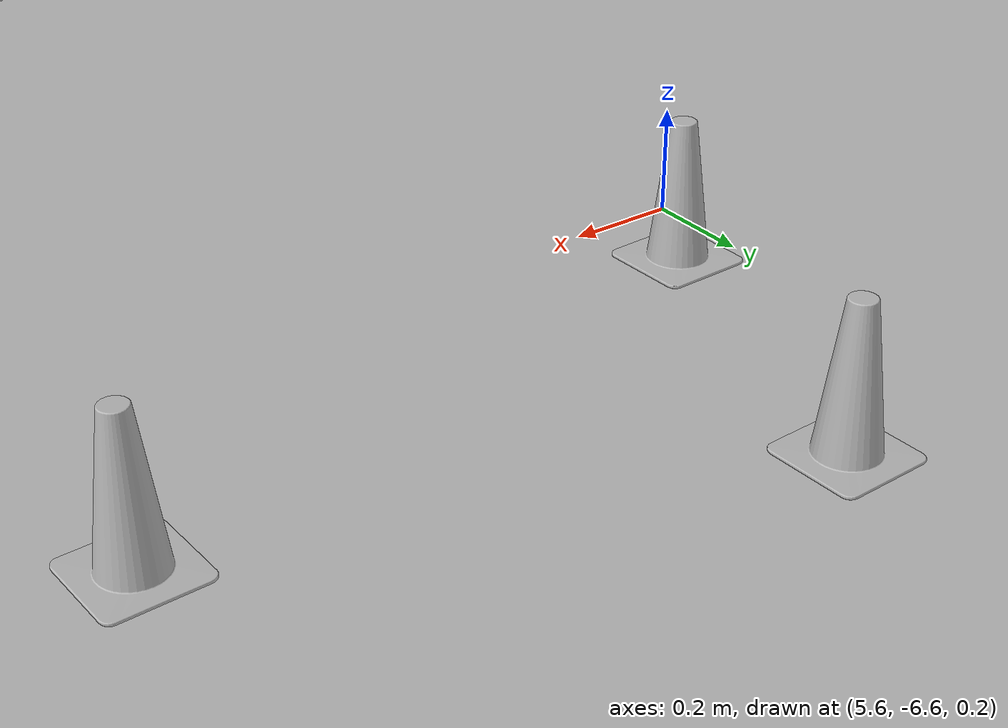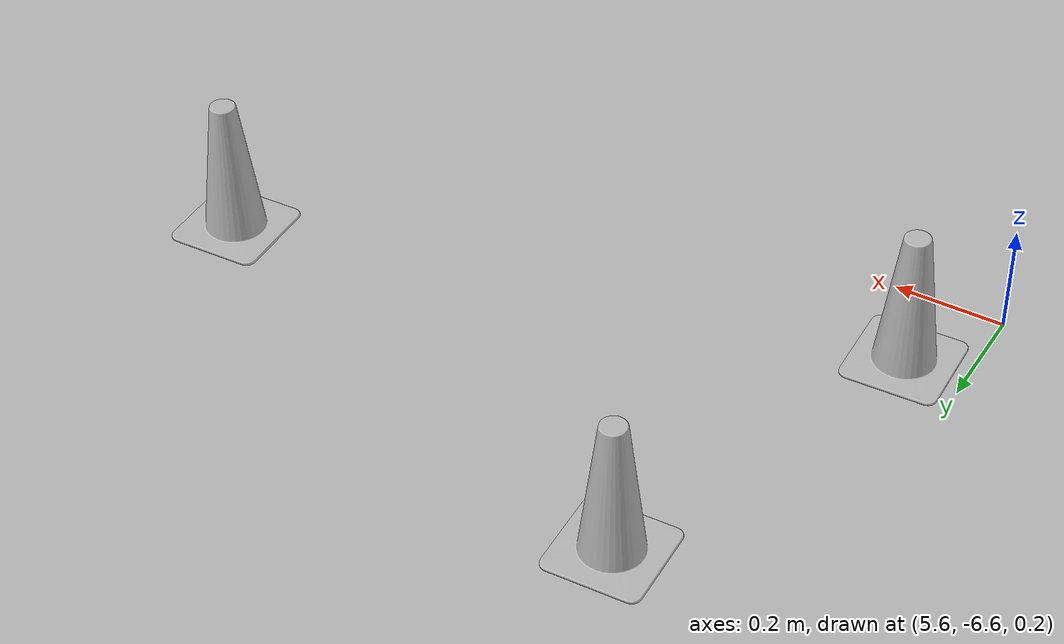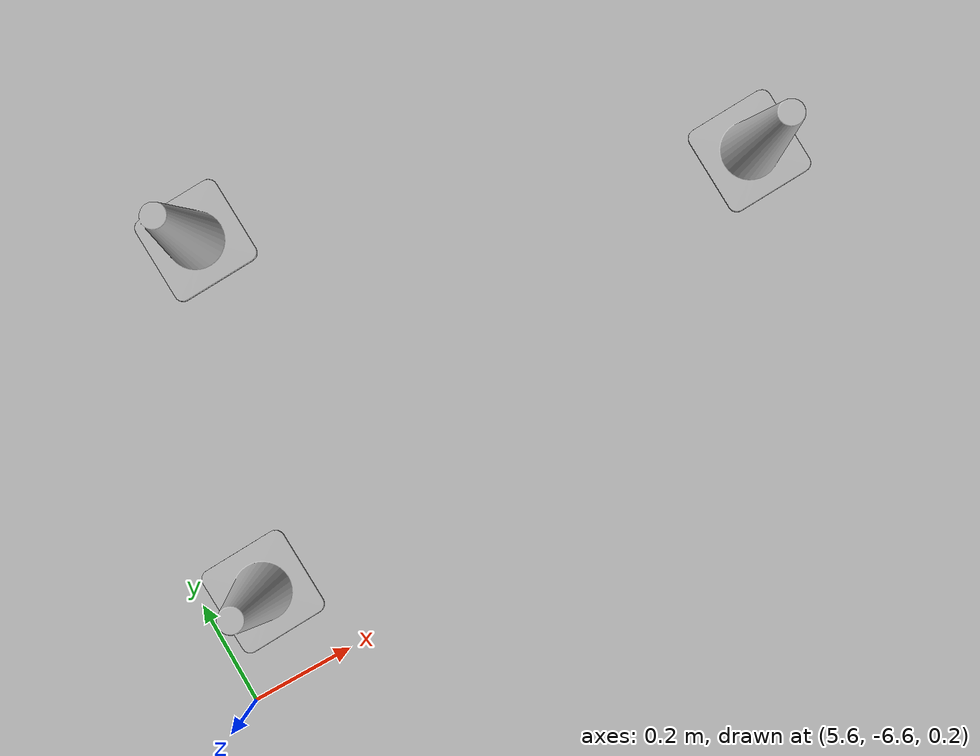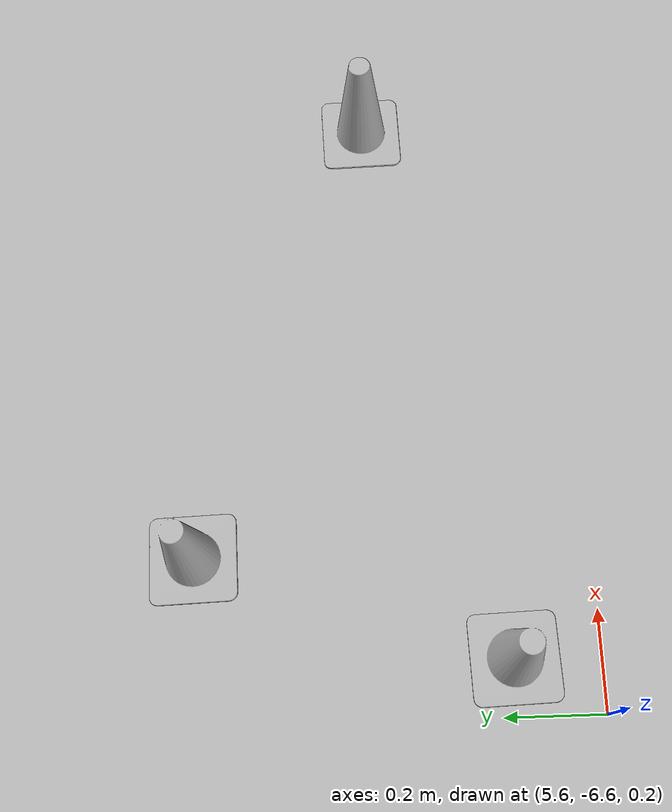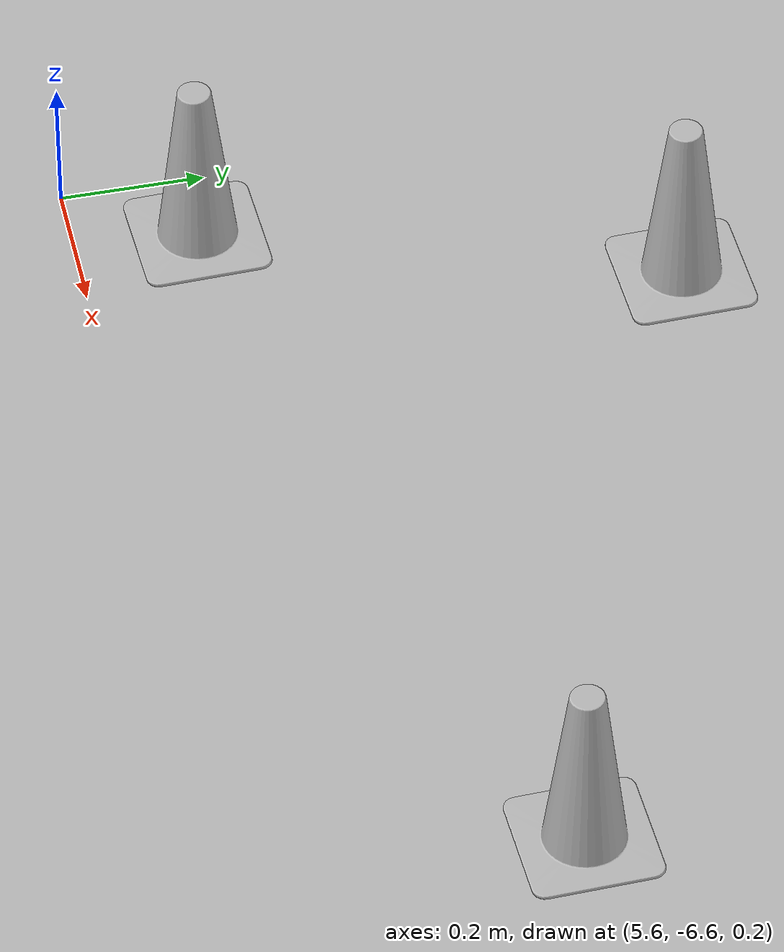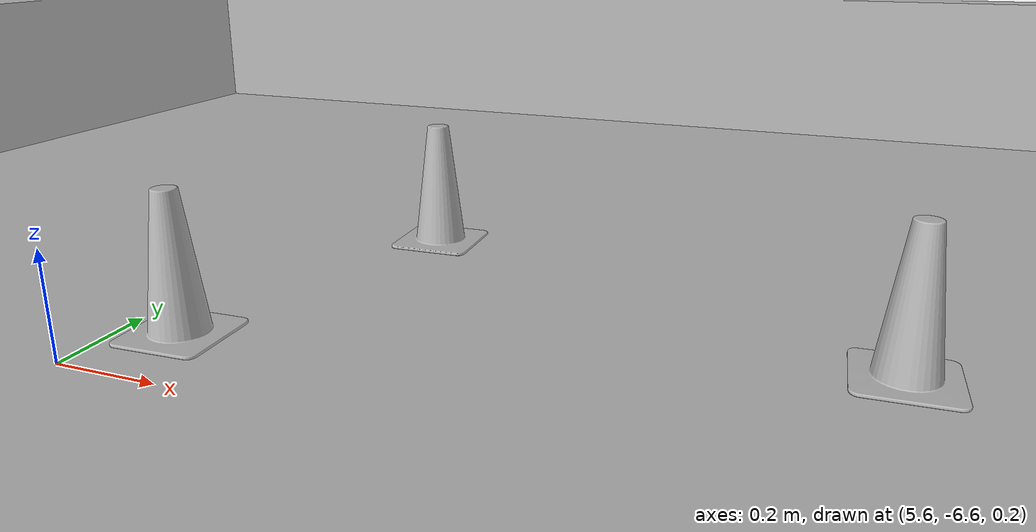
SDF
<?xml version="1.0"?>

<sdf version='1.9'>

  <world name='nav'>

    <physics name="1ms" type="ignored">
      <max_step_size>0.001</max_step_size>
      <real_time_factor>1.0</real_time_factor>
    </physics>

    <plugin
      filename="gz-sim-physics-system"
      name="gz::sim::systems::Physics">
    </plugin>
    <plugin
      filename="gz-sim-user-commands-system"
      name="gz::sim::systems::UserCommands">
    </plugin>
    <plugin
      filename="gz-sim-scene-broadcaster-system"
      name="gz::sim::systems::SceneBroadcaster">
    </plugin>
    <plugin
      filename="gz-sim-contact-system"
      name="gz::sim::systems::Contact">
    </plugin>
    <plugin
      filename="gz-sim-sensors-system"
      name="gz::sim::systems::Sensors">
      <render_engine>ogre2</render_engine>
    </plugin>

    <light name='sun' type='point'>
      <cast_shadows>true</cast_shadows>
      <visualize>true</visualize>
      <intensity>5.0</intensity>
      <pose>5.8 -6.3 6 0 0 0</pose>
      <diffuse>1 1 1 1</diffuse>
      <specular>0.6 0.6 0.6 1</specular>
      <attenuation>
        <range>1000</range>
        <constant>0.9</constant>
        <linear>0.5</linear>
        <quadratic>0.02</quadratic>
      </attenuation>
      <direction>-0.5 0.5 -1.0</direction>
    </light>

    <scene>
      <ambient>1 1 1 1</ambient>
      <background>1 1 1 1</background>
      <shadows>1</shadows>
      <grid>false</grid>
      <sky>
        <sunset>20</sunset>
      </sky>
    </scene>

    <model name='ground'>
      <pose>6.31 -6.3 0 1.57 0 0</pose>
      <static>true</static>
      <link name='link'>
        <collision name='collision'>
          <geometry>
            <mesh>
              <uri>meshes/nav.obj</uri>
              <scale>1 1 1</scale>
            </mesh>
          </geometry>
        </collision>
        <visual name='visual'>
          <geometry>
            <mesh>
              <uri>meshes/nav.obj</uri>
              <scale>1 1 1</scale>
            </mesh>
          </geometry>
        </visual>
      </link>
    </model>

    <model name='cone_1'>
      <pose>6.90 -6.16 0.20 1.57 0 0.35</pose>
      <static>true</static>
      <link name='link'>
        <collision name='collision'>
          <geometry>
            <mesh>
              <uri>meshes/traffic_cone.obj</uri>
              <scale>0.1 0.1 0.1</scale>
            </mesh>
          </geometry>
        </collision>
        <visual name='visual'>
          <geometry>
            <mesh>
              <uri>meshes/traffic_cone.obj</uri>
              <scale>0.1 0.1 0.1</scale>
            </mesh>
          </geometry>
        </visual>
      </link>
    </model>

    <model name='cone_2'>
      <pose>5.71 -6.43 0.20 1.57 0 0.35</pose>
      <static>true</static>
      <link name='link'>
        <collision name='collision'>
          <geometry>
            <mesh>
              <uri>meshes/traffic_cone.obj</uri>
              <scale>0.1 0.1 0.1</scale>
            </mesh>
          </geometry>
        </collision>
        <visual name='visual'>
          <geometry>
            <mesh>
              <uri>meshes/traffic_cone.obj</uri>
              <scale>0.1 0.1 0.1</scale>
            </mesh>
          </geometry>
        </visual>
      </link>
    </model>

    <model name='cone_3'>
      <pose>5.92 -5.80 0.20 1.57 0 0.35</pose>
      <static>true</static>
      <link name='link'>
        <collision name='collision'>
          <geometry>
            <mesh>
              <uri>meshes/traffic_cone.obj</uri>
              <scale>0.1 0.1 0.1</scale>
            </mesh>
          </geometry>
        </collision>
        <visual name='visual'>
          <geometry>
            <mesh>
              <uri>meshes/traffic_cone.obj</uri>
              <scale>0.1 0.1 0.1</scale>
            </mesh>
          </geometry>
        </visual>
      </link>
    </model>

  </world>

</sdf>
